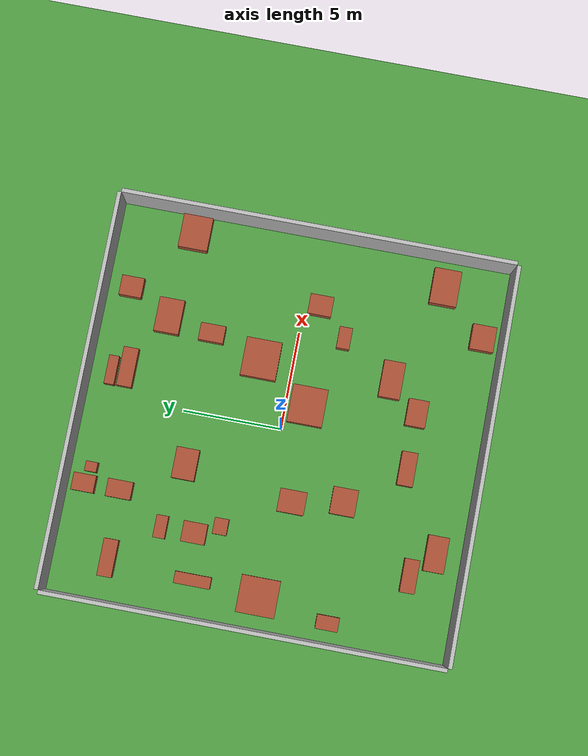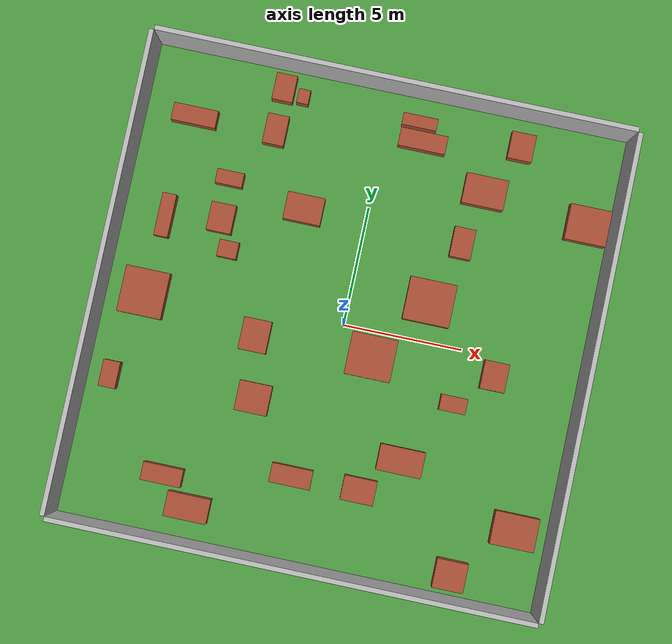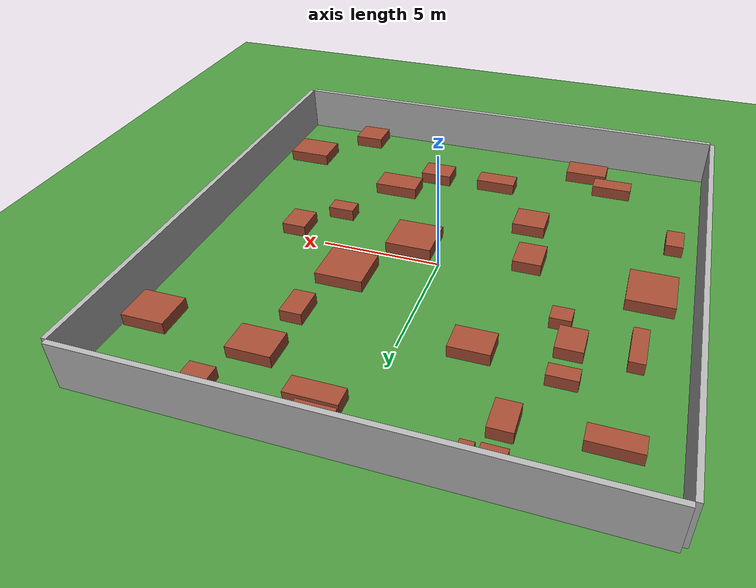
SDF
<?xml version='1.0' encoding='utf-8'?>
<sdf version="1.6"><world name="default"><physics type="ode"><real_time_update_rate>1000</real_time_update_rate><gravity>0 0 -9.81</gravity></physics><model name="ground_plane"><static>true</static><link name="ground_link"><collision name="collision"><geometry><plane><normal>0 0 1</normal><size>20 20</size></plane></geometry></collision><visual name="visual"><geometry><plane><normal>0 0 1</normal><size>20 20</size></plane></geometry><material><script><uri>file://media/materials/scripts/gazebo.material</uri><name>Gazebo/Grass</name></script></material></visual></link></model><model name="wall_north"><static>true</static><pose>0 10.1 1.0 0 0 0</pose><link name="link"><collision name="collision"><geometry><box><size>20 0.2 2.0</size></box></geometry></collision><visual name="visual"><geometry><box><size>20 0.2 2.0</size></box></geometry></visual></link></model><model name="wall_south"><static>true</static><pose>0 -10.1 1.0 0 0 0</pose><link name="link"><collision name="collision"><geometry><box><size>20 0.2 2.0</size></box></geometry></collision><visual name="visual"><geometry><box><size>20 0.2 2.0</size></box></geometry></visual></link></model><model name="wall_east"><static>true</static><pose>10.1 0 1.0 0 0 0</pose><link name="link"><collision name="collision"><geometry><box><size>0.2 20 2.0</size></box></geometry></collision><visual name="visual"><geometry><box><size>0.2 20 2.0</size></box></geometry></visual></link></model><model name="wall_west"><static>true</static><pose>-10.1 0 1.0 0 0 0</pose><link name="link"><collision name="collision"><geometry><box><size>0.2 20 2.0</size></box></geometry></collision><visual name="visual"><geometry><box><size>0.2 20 2.0</size></box></geometry></visual></link></model><include><uri>model://sun</uri></include><model name="box_0"><pose>9.05 6.15 0.25 0 0 0</pose><static>false</static><link name="link"><collision name="collision"><geometry><box><size>1.74 1.51 0.5</size></box></geometry></collision><visual name="visual"><geometry><box><size>1.74 1.51 0.5</size></box></geometry><material><script><uri>file://media/materials/scripts/gazebo.material</uri><name>Gazebo/Bricks</name></script></material></visual></link></model><model name="box_1"><pose>-4.49 9.16 0.25 0 0 0</pose><static>false</static><link name="link"><collision name="collision"><geometry><box><size>0.88 1.14 0.5</size></box></geometry></collision><visual name="visual"><geometry><box><size>0.88 1.14 0.5</size></box></geometry><material><script><uri>file://media/materials/scripts/gazebo.material</uri><name>Gazebo/Bricks</name></script></material></visual></link></model><model name="box_2"><pose>-5.91 3.27 0.25 0 0 0</pose><static>false</static><link name="link"><collision name="collision"><geometry><box><size>1.04 1.21 0.5</size></box></geometry></collision><visual name="visual"><geometry><box><size>1.04 1.21 0.5</size></box></geometry><material><script><uri>file://media/materials/scripts/gazebo.material</uri><name>Gazebo/Bricks</name></script></material></visual></link></model><model name="box_3"><pose>-5.36 2.04 0.25 0 0 0</pose><static>false</static><link name="link"><collision name="collision"><geometry><box><size>0.82 0.71 0.5</size></box></geometry></collision><visual name="visual"><geometry><box><size>0.82 0.71 0.5</size></box></geometry><material><script><uri>file://media/materials/scripts/gazebo.material</uri><name>Gazebo/Bricks</name></script></material></visual></link></model><model name="box_4"><pose>-3.5 -1.21 0.25 0 0 0</pose><static>false</static><link name="link"><collision name="collision"><geometry><box><size>1.17 1.36 0.5</size></box></geometry></collision><visual name="visual"><geometry><box><size>1.17 1.36 0.5</size></box></geometry><material><script><uri>file://media/materials/scripts/gazebo.material</uri><name>Gazebo/Bricks</name></script></material></visual></link></model><model name="box_5"><pose>-9.03 -4.02 0.25 0 0 0</pose><static>false</static><link name="link"><collision name="collision"><geometry><box><size>0.71 1.12 0.5</size></box></geometry></collision><visual name="visual"><geometry><box><size>0.71 1.12 0.5</size></box></geometry><material><script><uri>file://media/materials/scripts/gazebo.material</uri><name>Gazebo/Bricks</name></script></material></visual></link></model><model name="box_6"><pose>3.28 1.65 0.25 0 0 0</pose><static>false</static><link name="link"><collision name="collision"><geometry><box><size>1.97 1.81 0.5</size></box></geometry></collision><visual name="visual"><geometry><box><size>1.97 1.81 0.5</size></box></geometry><material><script><uri>file://media/materials/scripts/gazebo.material</uri><name>Gazebo/Bricks</name></script></material></visual></link></model><model name="box_7"><pose>-6.02 -7.6 0.25 0 0 0</pose><static>false</static><link name="link"><collision name="collision"><geometry><box><size>1.69 0.75 0.5</size></box></geometry></collision><visual name="visual"><geometry><box><size>1.69 0.75 0.5</size></box></geometry><material><script><uri>file://media/materials/scripts/gazebo.material</uri><name>Gazebo/Bricks</name></script></material></visual></link></model><model name="box_8"><pose>-8.21 2.9 0.25 0 0 0</pose><static>false</static><link name="link"><collision name="collision"><geometry><box><size>0.59 1.82 0.5</size></box></geometry></collision><visual name="visual"><geometry><box><size>0.59 1.82 0.5</size></box></geometry><material><script><uri>file://media/materials/scripts/gazebo.material</uri><name>Gazebo/Bricks</name></script></material></visual></link></model><model name="box_9"><pose>8.62 -6.84 0.25 0 0 0</pose><static>false</static><link name="link"><collision name="collision"><geometry><box><size>1.85 1.38 0.5</size></box></geometry></collision><visual name="visual"><geometry><box><size>1.85 1.38 0.5</size></box></geometry><material><script><uri>file://media/materials/scripts/gazebo.material</uri><name>Gazebo/Bricks</name></script></material></visual></link></model><model name="box_10"><pose>2.02 -6.54 0.25 0 0 0</pose><static>false</static><link name="link"><collision name="collision"><geometry><box><size>1.38 1.02 0.5</size></box></geometry></collision><visual name="visual"><geometry><box><size>1.38 1.02 0.5</size></box></geometry><material><script><uri>file://media/materials/scripts/gazebo.material</uri><name>Gazebo/Bricks</name></script></material></visual></link></model><model name="box_11"><pose>4.11 4.33 0.25 0 0 0</pose><static>false</static><link name="link"><collision name="collision"><geometry><box><size>0.89 1.28 0.5</size></box></geometry></collision><visual name="visual"><geometry><box><size>0.89 1.28 0.5</size></box></geometry><material><script><uri>file://media/materials/scripts/gazebo.material</uri><name>Gazebo/Bricks</name></script></material></visual></link></model><model name="box_12"><pose>5.1 -2.28 0.25 0 0 0</pose><static>false</static><link name="link"><collision name="collision"><geometry><box><size>1.11 0.66 0.5</size></box></geometry></collision><visual name="visual"><geometry><box><size>1.11 0.66 0.5</size></box></geometry><material><script><uri>file://media/materials/scripts/gazebo.material</uri><name>Gazebo/Bricks</name></script></material></visual></link></model><model name="box_13"><pose>-4.48 7.35 0.25 0 0 0</pose><static>false</static><link name="link"><collision name="collision"><geometry><box><size>0.9 1.27 0.5</size></box></geometry></collision><visual name="visual"><geometry><box><size>0.9 1.27 0.5</size></box></geometry><material><script><uri>file://media/materials/scripts/gazebo.material</uri><name>Gazebo/Bricks</name></script></material></visual></link></model><model name="box_14"><pose>-7.91 7.23 0.25 0 0 0</pose><static>false</static><link name="link"><collision name="collision"><geometry><box><size>1.88 0.74 0.5</size></box></geometry></collision><visual name="visual"><geometry><box><size>1.88 0.74 0.5</size></box></geometry><material><script><uri>file://media/materials/scripts/gazebo.material</uri><name>Gazebo/Bricks</name></script></material></visual></link></model><model name="box_15"><pose>1.33 8.93 0.25 0 0 0</pose><static>false</static><link name="link"><collision name="collision"><geometry><box><size>1.47 0.51 0.5</size></box></geometry></collision><visual name="visual"><geometry><box><size>1.47 0.51 0.5</size></box></geometry><material><script><uri>file://media/materials/scripts/gazebo.material</uri><name>Gazebo/Bricks</name></script></material></visual></link></model><model name="box_16"><pose>-4.72 -8.7 0.25 0 0 0</pose><static>false</static><link name="link"><collision name="collision"><geometry><box><size>1.81 1.04 0.5</size></box></geometry></collision><visual name="visual"><geometry><box><size>1.81 1.04 0.5</size></box></geometry><material><script><uri>file://media/materials/scripts/gazebo.material</uri><name>Gazebo/Bricks</name></script></material></visual></link></model><model name="box_17"><pose>-8.39 -0.43 0.25 0 0 0</pose><static>false</static><link name="link"><collision name="collision"><geometry><box><size>1.86 1.95 0.5</size></box></geometry></collision><visual name="visual"><geometry><box><size>1.86 1.95 0.5</size></box></geometry><material><script><uri>file://media/materials/scripts/gazebo.material</uri><name>Gazebo/Bricks</name></script></material></visual></link></model><model name="box_18"><pose>-0.82 -6.56 0.25 0 0 0</pose><static>false</static><link name="link"><collision name="collision"><geometry><box><size>1.72 0.8 0.5</size></box></geometry></collision><visual name="visual"><geometry><box><size>1.72 0.8 0.5</size></box></geometry><material><script><uri>file://media/materials/scripts/gazebo.material</uri><name>Gazebo/Bricks</name></script></material></visual></link></model><model name="box_19"><pose>5.7 8.79 0.25 0 0 0</pose><static>false</static><link name="link"><collision name="collision"><geometry><box><size>1.02 1.15 0.5</size></box></geometry></collision><visual name="visual"><geometry><box><size>1.02 1.15 0.5</size></box></geometry><material><script><uri>file://media/materials/scripts/gazebo.material</uri><name>Gazebo/Bricks</name></script></material></visual></link></model><model name="box_20"><pose>-3.02 -3.75 0.25 0 0 0</pose><static>false</static><link name="link"><collision name="collision"><geometry><box><size>1.37 1.26 0.5</size></box></geometry></collision><visual name="visual"><geometry><box><size>1.37 1.26 0.5</size></box></geometry><material><script><uri>file://media/materials/scripts/gazebo.material</uri><name>Gazebo/Bricks</name></script></material></visual></link></model><model name="box_21"><pose>1.38 -1.08 0.25 0 0 0</pose><static>false</static><link name="link"><collision name="collision"><geometry><box><size>1.93 1.79 0.5</size></box></geometry></collision><visual name="visual"><geometry><box><size>1.93 1.79 0.5</size></box></geometry><material><script><uri>file://media/materials/scripts/gazebo.material</uri><name>Gazebo/Bricks</name></script></material></visual></link></model><model name="box_22"><pose>1.62 8.17 0.25 0 0 0</pose><static>false</static><link name="link"><collision name="collision"><geometry><box><size>2.0 0.77 0.5</size></box></geometry></collision><visual name="visual"><geometry><box><size>2.0 0.77 0.5</size></box></geometry><material><script><uri>file://media/materials/scripts/gazebo.material</uri><name>Gazebo/Bricks</name></script></material></visual></link></model><model name="box_23"><pose>6.53 -0.8 0.25 0 0 0</pose><static>false</static><link name="link"><collision name="collision"><geometry><box><size>1.03 1.2 0.5</size></box></geometry></collision><visual name="visual"><geometry><box><size>1.03 1.2 0.5</size></box></geometry><material><script><uri>file://media/materials/scripts/gazebo.material</uri><name>Gazebo/Bricks</name></script></material></visual></link></model><model name="box_24"><pose>4.58 6.63 0.25 0 0 0</pose><static>false</static><link name="link"><collision name="collision"><geometry><box><size>1.77 1.28 0.5</size></box></geometry></collision><visual name="visual"><geometry><box><size>1.77 1.28 0.5</size></box></geometry><material><script><uri>file://media/materials/scripts/gazebo.material</uri><name>Gazebo/Bricks</name></script></material></visual></link></model><model name="box_25"><pose>-3.64 8.95 0.25 0 0 0</pose><static>false</static><link name="link"><collision name="collision"><geometry><box><size>0.5 0.6 0.5</size></box></geometry></collision><visual name="visual"><geometry><box><size>0.5 0.6 0.5</size></box></geometry><material><script><uri>file://media/materials/scripts/gazebo.material</uri><name>Gazebo/Bricks</name></script></material></visual></link></model><model name="box_26"><pose>6.4 -9.15 0.25 0 0 0</pose><static>false</static><link name="link"><collision name="collision"><geometry><box><size>1.3 1.21 0.5</size></box></geometry></collision><visual name="visual"><geometry><box><size>1.3 1.21 0.5</size></box></geometry><material><script><uri>file://media/materials/scripts/gazebo.material</uri><name>Gazebo/Bricks</name></script></material></visual></link></model><model name="box_27"><pose>-5.92 4.96 0.25 0 0 0</pose><static>false</static><link name="link"><collision name="collision"><geometry><box><size>1.14 0.6 0.5</size></box></geometry></collision><visual name="visual"><geometry><box><size>1.14 0.6 0.5</size></box></geometry><material><script><uri>file://media/materials/scripts/gazebo.material</uri><name>Gazebo/Bricks</name></script></material></visual></link></model><model name="box_28"><pose>-2.63 4.36 0.25 0 0 0</pose><static>false</static><link name="link"><collision name="collision"><geometry><box><size>1.58 1.16 0.5</size></box></geometry></collision><visual name="visual"><geometry><box><size>1.58 1.16 0.5</size></box></geometry><material><script><uri>file://media/materials/scripts/gazebo.material</uri><name>Gazebo/Bricks</name></script></material></visual></link></model><model name="box_29"><pose>3.46 -5.01 0.25 0 0 0</pose><static>false</static><link name="link"><collision name="collision"><geometry><box><size>1.89 1.09 0.5</size></box></geometry></collision><visual name="visual"><geometry><box><size>1.89 1.09 0.5</size></box></geometry><material><script><uri>file://media/materials/scripts/gazebo.material</uri><name>Gazebo/Bricks</name></script></material></visual></link></model></world></sdf>
